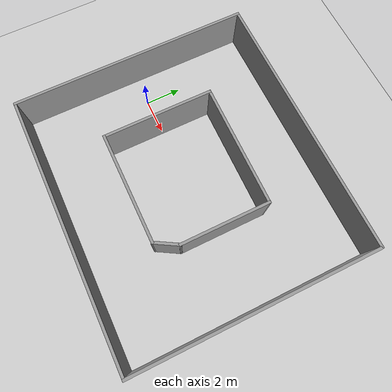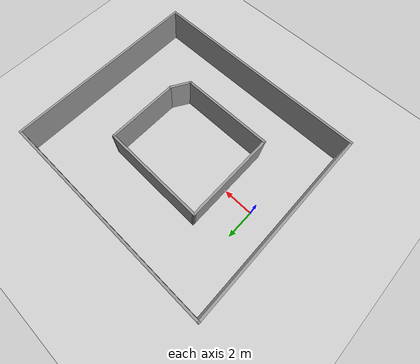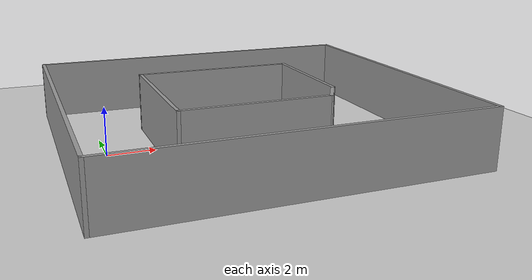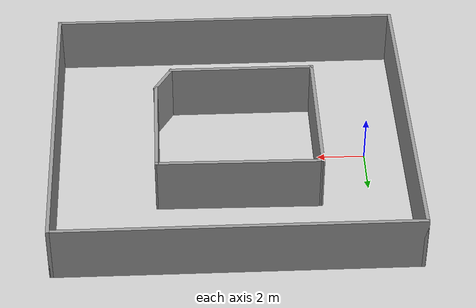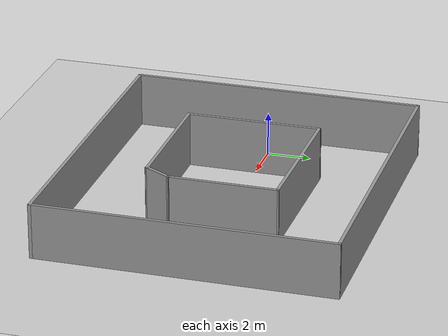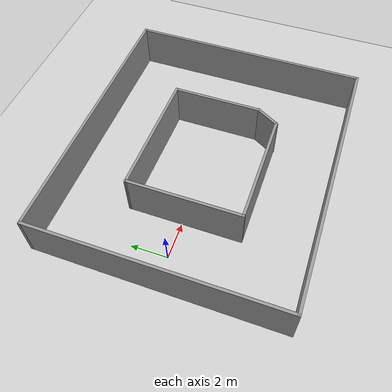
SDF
<sdf version="1.6">
 <world name="default">
  <light name="sun" type="directional">
   <pose>0 0 10 0 -0 0</pose>
   <diffuse>0.8 0.8 0.8 1</diffuse>
   <specular>0.1 0.1 0.1 1</specular>
   <attenuation>
    <range>1000</range>
    <constant>0.9</constant>
    <linear>0.01</linear>
    <quadratic>0.001</quadratic>
   </attenuation>
   <direction>-0.5 0.5 -1</direction>
  </light>
  <model name="ground_plane">
   <static>1</static>
   <link name="link">
    <collision name="collision">
     <geometry><plane><normal>0 0 1</normal><size>100 100</size></plane></geometry>
     <surface><friction><ode><mu>100</mu><mu2>50</mu2></ode></friction></surface>
    </collision>
    <visual name="visual">
     <cast_shadows>0</cast_shadows>
     <geometry><plane><normal>0 0 1</normal><size>100 100</size></plane></geometry>
     <material>
      <script><uri>file://media/materials/scripts/gazebo.material</uri><name>Gazebo/Grey</name></script>
     </material>
    </visual>
   </link>
  </model>
  <gravity>0 0 -9.8</gravity>
  <magnetic_field>6e-06 2.3e-05 -4.2e-05</magnetic_field>
  <atmosphere type="adiabatic"/>
  <physics name="default_physics" default="0" type="ode">
   <max_step_size>0.001</max_step_size>
   <real_time_factor>1</real_time_factor>
   <real_time_update_rate>1000</real_time_update_rate>
  </physics>
  <scene><ambient>0.4 0.4 0.4 1</ambient><background>0.7 0.7 0.7 1</background><shadows>1</shadows></scene>
  <spherical_coordinates>
   <surface_model>EARTH_WGS84</surface_model>
   <latitude_deg>0</latitude_deg>
   <longitude_deg>0</longitude_deg>
   <elevation>0</elevation>
   <heading_deg>0</heading_deg>
  </spherical_coordinates>
  <model name="square">
   <pose>5.72006 -0.05634 0 0 -0 0</pose>
   <link name="Wall_0">
    <collision name="Wall_0_Collision">
     <geometry><box><size>13.5 0.15 2.5</size></box></geometry>
     <pose>0 0 1.25 0 -0 0</pose>
    </collision>
    <visual name="Wall_0_Visual">
     <pose>0 0 1.25 0 -0 0</pose>
     <geometry><box><size>13.5 0.15 2.5</size></box></geometry>
     <material>
      <script><uri>file://media/materials/scripts/gazebo.material</uri><name>Gazebo/Grey</name></script>
      <ambient>1 1 1 1</ambient>
     </material>
    </visual>
    <pose>-7.425 0 0 0 0 -1.5708</pose>
   </link>
   <link name="Wall_10">
    <collision name="Wall_10_Collision">
     <geometry><box><size>6.92548 0.15 2.5</size></box></geometry>
     <pose>0 0 1.25 0 -0 0</pose>
    </collision>
    <visual name="Wall_10_Visual">
     <pose>0 0 1.25 0 -0 0</pose>
     <geometry><box><size>6.92548 0.15 2.5</size></box></geometry>
     <material>
      <script><uri>file://media/materials/scripts/gazebo.material</uri><name>Gazebo/Grey</name></script>
      <ambient>1 1 1 1</ambient>
     </material>
    </visual>
    <pose>-0.235888 2.95198 0 0 -0 3.12966</pose>
   </link>
   <link name="Wall_2">
    <collision name="Wall_2_Collision">
     <geometry><box><size>15 0.15 2.5</size></box></geometry>
     <pose>0 0 1.25 0 -0 0</pose>
    </collision>
    <visual name="Wall_2_Visual">
     <pose>0 0 1.25 0 -0 0</pose>
     <geometry><box><size>15 0.15 2.5</size></box></geometry>
     <material>
      <script><uri>file://media/materials/scripts/gazebo.material</uri><name>Gazebo/Grey</name></script>
      <ambient>1 1 1 1</ambient>
     </material>
    </visual>
    <pose>0 6.675 0 0 -0 0</pose>
   </link>
   <link name="Wall_3">
    <collision name="Wall_3_Collision">
     <geometry><box><size>13.5 0.15 2.5</size></box></geometry>
     <pose>0 0 1.25 0 -0 0</pose>
    </collision>
    <visual name="Wall_3_Visual">
     <pose>0 0 1.25 0 -0 0</pose>
     <geometry><box><size>13.5 0.15 2.5</size></box></geometry>
     <material>
      <script><uri>file://media/materials/scripts/gazebo.material</uri><name>Gazebo/Grey</name></script>
      <ambient>1 1 1 1</ambient>
     </material>
    </visual>
    <pose>7.425 0 0 0 0 -1.5708</pose>
   </link>
   <link name="Wall_4">
    <collision name="Wall_4_Collision">
     <geometry><box><size>15 0.15 2.5</size></box></geometry>
     <pose>0 0 1.25 0 -0 0</pose>
    </collision>
    <visual name="Wall_4_Visual">
     <pose>0 0 1.25 0 -0 0</pose>
     <geometry><box><size>15 0.15 2.5</size></box></geometry>
     <material>
      <script><uri>file://media/materials/scripts/gazebo.material</uri><name>Gazebo/Grey</name></script>
      <ambient>1 1 1 1</ambient>
     </material>
    </visual>
    <pose>0 -6.675 0 0 -0 3.14159</pose>
   </link>
   <link name="Wall_6">
    <collision name="Wall_6_Collision">
     <geometry><box><size>6.25 0.15 2.5</size></box></geometry>
     <pose>0 0 1.25 0 -0 0</pose>
    </collision>
    <visual name="Wall_6_Visual">
     <pose>0 0 1.25 0 -0 0</pose>
     <geometry><box><size>6.25 0.15 2.5</size></box></geometry>
     <material>
      <script><uri>file://media/materials/scripts/gazebo.material</uri><name>Gazebo/Grey</name></script>
      <ambient>1 1 1 1</ambient>
     </material>
    </visual>
    <pose>-3.62339 -0.057592 0 0 0 -1.5708</pose>
   </link>
   <link name="Wall_7">
    <collision name="Wall_7_Collision">
     <geometry><box><size>6.25 0.15 2.5</size></box></geometry>
     <pose>0 0 1.25 0 -0 0</pose>
    </collision>
    <visual name="Wall_7_Visual">
     <pose>0 0 1.25 0 -0 0</pose>
     <geometry><box><size>6.25 0.15 2.5</size></box></geometry>
     <material>
      <script><uri>file://media/materials/scripts/gazebo.material</uri><name>Gazebo/Grey</name></script>
      <ambient>1 1 1 1</ambient>
     </material>
    </visual>
    <pose>-0.573388 -3.10759 0 0 -0 0</pose>
   </link>
   <link name="Wall_8">
    <collision name="Wall_8_Collision">
     <geometry><box><size>1.5 0.15 2.5</size></box></geometry>
     <pose>0 0 1.25 0 -0 0</pose>
    </collision>
    <visual name="Wall_8_Visual">
     <pose>0 0 1.25 0 -0 0</pose>
     <geometry><box><size>1.5 0.15 2.5</size></box></geometry>
     <material>
      <script><uri>file://media/materials/scripts/gazebo.material</uri><name>Gazebo/Grey</name></script>
      <ambient>1 1 1 1</ambient>
     </material>
    </visual>
    <pose>2.81411 -2.52303 0 0 -0 1.0472</pose>
   </link>
   <link name="Wall_9">
    <collision name="Wall_9_Collision">
     <geometry><box><size>5 0.15 2.5</size></box></geometry>
     <pose>0 0 1.25 0 -0 0</pose>
    </collision>
    <visual name="Wall_9_Visual">
     <pose>0 0 1.25 0 -0 0</pose>
     <geometry><box><size>5 0.15 2.5</size></box></geometry>
     <material>
      <script><uri>file://media/materials/scripts/gazebo.material</uri><name>Gazebo/Grey</name></script>
      <ambient>1 1 1 1</ambient>
     </material>
    </visual>
    <pose>3.15161 0.486542 0 0 -0 1.5708</pose>
   </link>
   <static>1</static>
  </model>
 </world>
</sdf>
